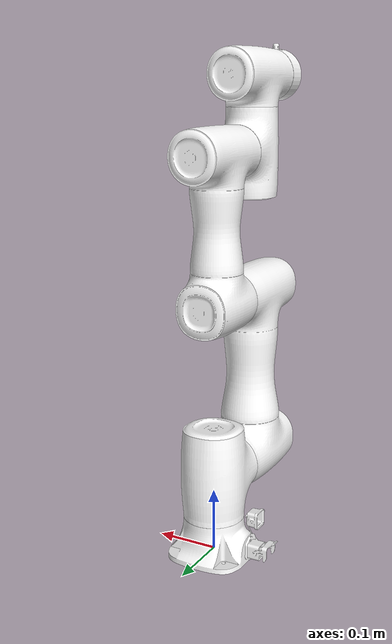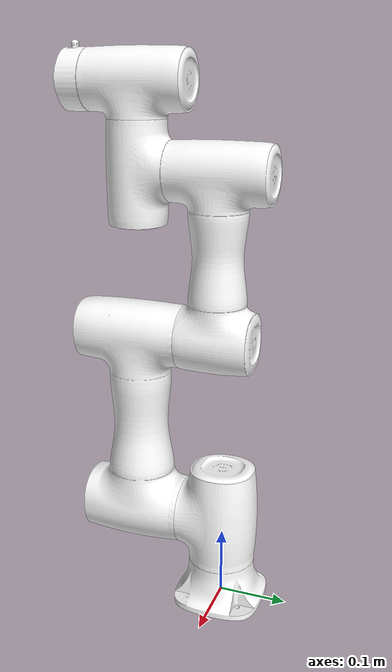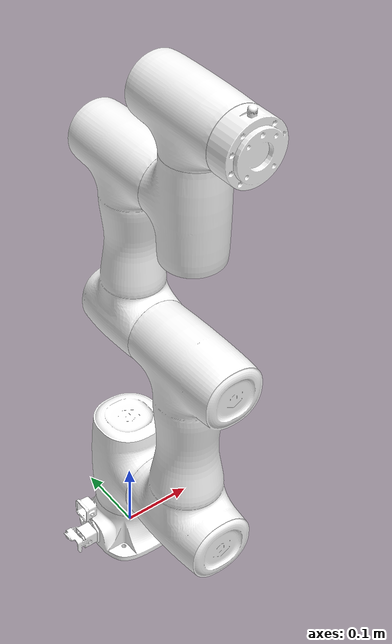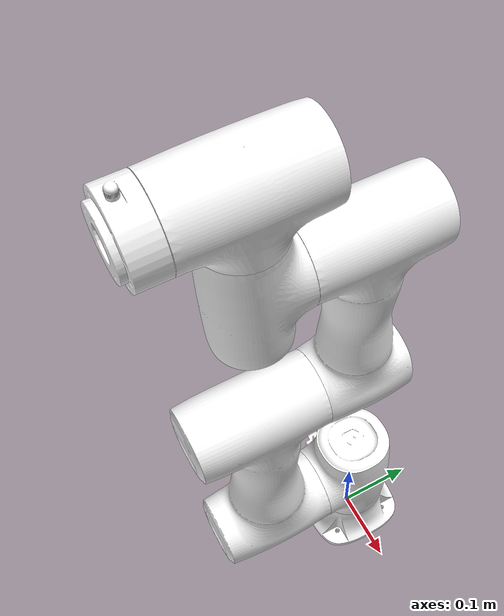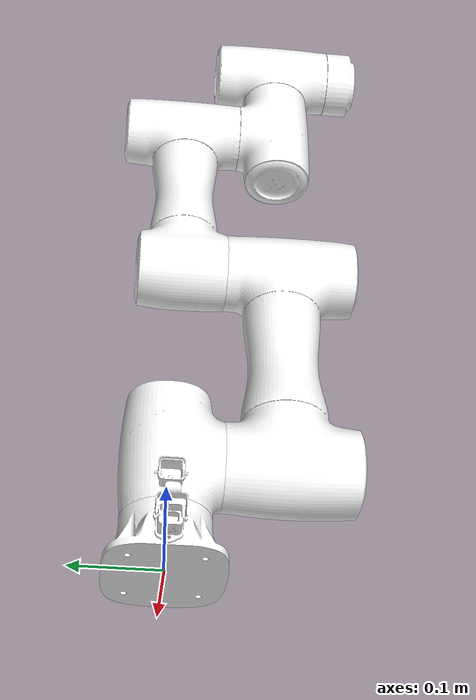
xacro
<?xml version="1.0"?>
<robot name="cr3_robot" xmlns:xacro="http://ros.org/wiki/xacro">
  <link name="dummy_link" />
  <link
    name="base_link">
    <inertial>
      <origin
        xyz="-0.0027213 3.915E-07 0.022038"
        rpy="0 0 0" />
      <mass
        value="0.653" />
      <inertia
        ixx="0.00075137"
        ixy="-3.0366E-08"
        ixz="1.2825E-06"
        iyy="0.00080094"
        iyz="2.5423E-09"
        izz="0.0010902" />
    </inertial>
    <visual>
      <origin
        xyz="0 0 0"
        rpy="0 0 0" />
      <geometry>
        <mesh
          filename="file://$(find cr_description)/meshes/cr3/base_link.STL" />
      </geometry>
      <material
        name="">
        <color
          rgba="1 1 1 1" />
      </material>
    </visual>
    <collision>
      <origin
        xyz="0 0 0"
        rpy="0 0 0" />
      <geometry>
        <mesh
          filename="file://$(find cr_description)/meshes/cr3/base_link.STL" />
      </geometry>
    </collision>
  </link>
  <link  name="world"/>
<joint name="world_joint" type="fixed">
    <parent link="world" />
    <child  link="dummy_link" />
  </joint>

  <joint name="dummy_joint" type="fixed">
    <parent link="dummy_link" />
    <child  link="base_link" />
  </joint>

  <link
    name="Link1">
    <inertial>
      <origin
        xyz="-3.68657602416735E-05 -0.00394516685385322 0.00364037839421286"
        rpy="0 0 0" />
      <mass
        value="1.31100598822002" />
      <inertia
        ixx="0.00202531167977736"
        ixy="-1.62039964254407E-06"
        ixz="4.44242218921916E-07"
        iyy="0.00198085794611413"
        iyz="0.000256891817572315"
        izz="0.00183966900872187" />
    </inertial>
    <visual>
      <origin
        xyz="0 0 0"
        rpy="0 0 0" />
      <geometry>
        <mesh
          filename="file://$(find cr_description)/meshes/cr3/Link1.STL" />
      </geometry>
      <material
        name="">
        <color
          rgba="1 1 1 1" />
      </material>
    </visual>
    <collision>
      <origin
        xyz="0 0 0"
        rpy="0 0 0" />
      <geometry>
        <mesh
          filename="file://$(find cr_description)/meshes/cr3/Link1.STL" />
      </geometry>
    </collision>
  </link>
  <joint
    name="joint1"
    type="revolute">
    <origin
      xyz="0 0 0.1283"
      rpy="0 0 0" />
    <parent
      link="base_link" />
    <child
      link="Link1" />
    <axis
      xyz="0 0 1" />
    <limit
      lower="-3.14"
      upper="3.14"
      effort="300"
      velocity="100" />
  </joint>
  <link
    name="Link2">
    <inertial>
      <origin
        xyz="-0.129235280055448 1.440541622715E-05 0.133173619961293"
        rpy="0 0 0" />
      <mass
        value="3.40043726977504" />
      <inertia
        ixx="0.00450581324845612"
        ixy="1.58054368766225E-06"
        ixz="8.56287041890268E-05"
        iyy="0.00632329822349442"
        iyz="-4.41201729949356E-07"
        izz="0.00578241711656701" />
    </inertial>
    <visual>
      <origin
        xyz="0 0 0"
        rpy="0 0 0" />
      <geometry>
        <mesh
          filename="file://$(find cr_description)/meshes/cr3/Link2.STL" />
      </geometry>
      <material
        name="">
        <color
          rgba="1 1 1 1" />
      </material>
    </visual>
    <collision>
      <origin
        xyz="0 0 0"
        rpy="0 0 0" />
      <geometry>
        <mesh
          filename="file://$(find cr_description)/meshes/cr3/Link2.STL" />
      </geometry>
    </collision>
  </link>
  <joint
    name="joint2"
    type="revolute">
    <origin
      xyz="0 0 0"
      rpy="1.5708 1.5708 0" />
    <parent
      link="Link1" />
    <child
      link="Link2" />
    <axis
      xyz="0 0 1" />
    <limit
      lower="-3.14"
      upper="3.14"
      effort="300"
      velocity="100" />
  </joint>
  <link
    name="Link3">
    <inertial>
      <origin
        xyz="-0.119822632176479 8.63344146663093E-08 0.0099876637825216"
        rpy="0 0 0" />
      <mass
        value="2.21449412948544" />
      <inertia
        ixx="0.00236120280734313"
        ixy="1.81888962826726E-08"
        ixz="0.000137629457194959"
        iyy="0.00313635345351584"
        iyz="-1.39166877342495E-08"
        izz="0.00285118872456311" />
    </inertial>
    <visual>
      <origin
        xyz="0 0 0"
        rpy="0 0 0" />
      <geometry>
        <mesh
          filename="file://$(find cr_description)/meshes/cr3/Link3.STL" />
      </geometry>
      <material
        name="">
        <color
          rgba="1 1 1 1" />
      </material>
    </visual>
    <collision>
      <origin
        xyz="0 0 0"
        rpy="0 0 0" />
      <geometry>
        <mesh
          filename="file://$(find cr_description)/meshes/cr3/Link3.STL" />
      </geometry>
    </collision>
  </link>
  <joint
    name="joint3"
    type="revolute">
    <origin
      xyz="-0.274 0 0"
      rpy="0 0 0" />
    <parent
      link="Link2" />
    <child
      link="Link3" />
    <axis
      xyz="0 0 1" />
    <limit
      lower="-2.86"
      upper="2.86"
      effort="300"
      velocity="100" />
  </joint>
  <link
    name="Link4">
    <inertial>
      <origin
        xyz="1.74679534498573E-07 0.0034522361215461 -0.0028730999658578"
        rpy="0 0 0" />
      <mass
        value="0.842272956366123" />
      <inertia
        ixx="0.00100389823526424"
        ixy="-3.26498724132116E-09"
        ixz="-3.83652674720848E-09"
        iyy="0.000793473566890046"
        iyz="0.000133420135294005"
        izz="0.000993889852029541" />
    </inertial>
    <visual>
      <origin
        xyz="0 0 0"
        rpy="0 0 0" />
      <geometry>
        <mesh
          filename="file://$(find cr_description)/meshes/cr3/Link4.STL" />
      </geometry>
      <material
        name="">
        <color
          rgba="1 1 1 1" />
      </material>
    </visual>
    <collision>
      <origin
        xyz="0 0 0"
        rpy="0 0 0" />
      <geometry>
        <mesh
          filename="file://$(find cr_description)/meshes/cr3/Link4.STL" />
      </geometry>
    </collision>
  </link>
  <joint
    name="joint4"
    type="revolute">
    <origin
      xyz="-0.23 0 0.1283"
      rpy="0 0 -1.5708" />
    <parent
      link="Link3" />
    <child
      link="Link4" />
    <axis
      xyz="0 0 1" />
    <limit
      lower="-3.14"
      upper="3.14"
      effort="300"
      velocity="100" />
  </joint>
  <link
    name="Link5">
    <inertial>
      <origin
        xyz="-1.74603758796282E-07 -0.00333192403958193 -0.00286780844130663"
        rpy="0 0 0" />
      <mass
        value="0.843692877114241" />
      <inertia
        ixx="0.0010085532680982"
        ixy="-7.28325271824168E-09"
        ixz="9.25818664621925E-09"
        iyy="0.000794614679668754"
        iyz="-0.000133904812596915"
        izz="0.000998497358703575" />
    </inertial>
    <visual>
      <origin
        xyz="0 0 0"
        rpy="0 0 0" />
      <geometry>
        <mesh
          filename="file://$(find cr_description)/meshes/cr3/Link5.STL" />
      </geometry>
      <material
        name="">
        <color
          rgba="1 1 1 1" />
      </material>
    </visual>
    <collision>
      <origin
        xyz="0 0 0"
        rpy="0 0 0" />
      <geometry>
        <mesh
          filename="file://$(find cr_description)/meshes/cr3/Link5.STL" />
      </geometry>
    </collision>
  </link>
  <joint
    name="joint5"
    type="revolute">
    <origin
      xyz="0 -0.116 0"
      rpy="1.5708 0 0" />
    <parent
      link="Link4" />
    <child
      link="Link5" />
    <axis
      xyz="0 0 1" />
    <limit
      lower="-3.14"
      upper="3.14"
      effort="300"
      velocity="100" />
  </joint>
  <link
    name="Link6">
    <inertial>
      <origin
        xyz="-5.77233004964394E-07 0.000270130842674243 -0.0201386770129675"
        rpy="0 0 0" />
      <mass
        value="0.159409278145106" />
      <inertia
        ixx="8.29484481057063E-05"
        ixy="-1.45209400395148E-09"
        ixz="-1.72340872805449E-11"
        iyy="8.35928339777967E-05"
        iyz="-1.33911019721127E-07"
        izz="0.000131911087085913" />
    </inertial>
    <visual>
      <origin
        xyz="0 0 0"
        rpy="0 0 0" />
      <geometry>
        <mesh
          filename="file://$(find cr_description)/meshes/cr3/Link6.STL" />
      </geometry>
      <material
        name="">
        <color
          rgba="1 1 1 1" />
      </material>
    </visual>
    <collision>
      <origin
        xyz="0 0 0"
        rpy="0 0 0" />
      <geometry>
        <mesh
          filename="file://$(find cr_description)/meshes/cr3/Link6.STL" />
      </geometry>
    </collision>
  </link>
  <joint
    name="joint6"
    type="revolute">
    <origin
      xyz="0 0.105 0"
      rpy="-1.5708 0 0" />
    <parent
      link="Link5" />
    <child
      link="Link6" />
    <axis
      xyz="0 0 1" />
    <limit
      lower="-6.28"
      upper="6.28"
      effort="300"
      velocity="100" />
  </joint>

 <xacro:macro name="cr3_transmission" params="joint_name">
     <transmission name="${joint_name}_trans">
       <type>transmission_interface/SimpleTransmission</type>
       <joint name="${joint_name}">
         <hardwareInterface>hardware_interface/PositionJointInterface</hardwareInterface>
       </joint>
       <actuator name="${joint_name}_motor">
         <mechanicalReduction>1</mechanicalReduction>
       </actuator>
     </transmission>
 </xacro:macro>

 <xacro:cr3_transmission joint_name="joint1"/>
 <xacro:cr3_transmission joint_name="joint2"/>
 <xacro:cr3_transmission joint_name="joint3"/>
 <xacro:cr3_transmission joint_name="joint4"/>
 <xacro:cr3_transmission joint_name="joint5"/>
 <xacro:cr3_transmission joint_name="joint6"/>
 <!-- ros_control plugin -->
 <gazebo>
     <plugin name="gazebo_ros_control" filename="libgazebo_ros_control.so">
         <robotNamespace>/cr3_robot</robotNamespace>
     </plugin>
 </gazebo>

</robot>
